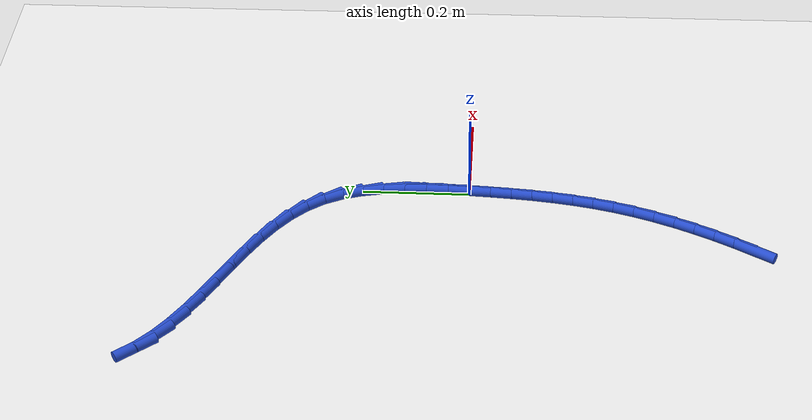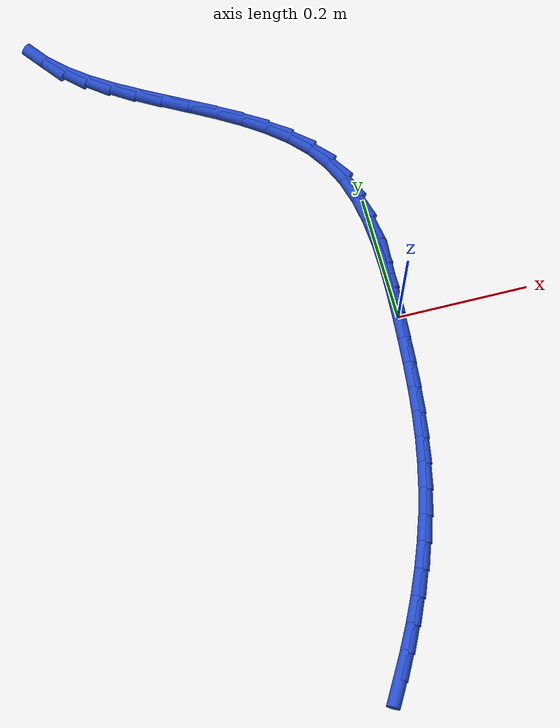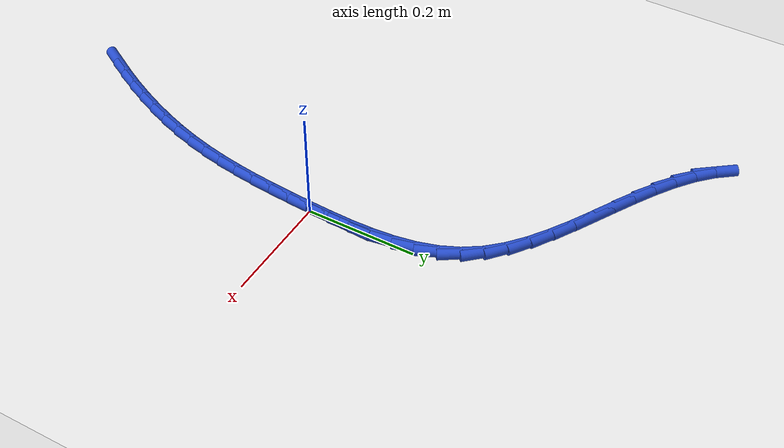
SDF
<sdf version="1.6">
 <world name="default">
  <model name="ground_plane">
   <static>1</static>
   <link name="link">
    <collision name="collision">
     <geometry><plane><normal>0 0 1</normal><size>100 100</size></plane></geometry>
     <surface><friction><ode><mu>100</mu><mu2>50</mu2></ode></friction></surface>
    </collision>
    <visual name="visual">
     <cast_shadows>0</cast_shadows>
     <geometry><plane><normal>0 0 1</normal><size>100 100</size></plane></geometry>
     <material>
      <script><uri>file://media/materials/scripts/gazebo.material</uri><name>Gazebo/WhiteGlow</name></script>
     </material>
    </visual>
   </link>
  </model>
  <model name="line">
   <link name="link_0">
    <pose>-4.9439619065339e-17 -1.3877787807814457e-17 0.01 0 1.57 1.5212782375140808</pose>
    <collision name="collision">
     <geometry><cylinder><radius>0.01</radius><length>0.08</length></cylinder></geometry>
    </collision>
    <visual name="visual">
     <material>
      <script><name>Gazebo/Blue</name><uri>file://media/materials/scripts/gazebo.material</uri></script>
     </material>
     <geometry><cylinder><radius>0.01</radius><length>0.08</length></cylinder></geometry>
    </visual>
   </link>
   <link name="link_1">
    <pose>0.002019072190069594 0.0407411042475016 0.01 0 1.57 1.547509694619837</pose>
    <collision name="collision">
     <geometry><cylinder><radius>0.01</radius><length>0.08</length></cylinder></geometry>
    </collision>
    <visual name="visual">
     <material>
      <script><name>Gazebo/Blue</name><uri>file://media/materials/scripts/gazebo.material</uri></script>
     </material>
     <geometry><cylinder><radius>0.01</radius><length>0.08</length></cylinder></geometry>
    </visual>
   </link>
   <link name="link_2">
    <pose>0.00297402738892121 0.08174242087388409 0.01 0 1.57 -1.5500578191192729</pose>
    <collision name="collision">
     <geometry><cylinder><radius>0.01</radius><length>0.08</length></cylinder></geometry>
    </collision>
    <visual name="visual">
     <material>
      <script><name>Gazebo/Blue</name><uri>file://media/materials/scripts/gazebo.material</uri></script>
     </material>
     <geometry><cylinder><radius>0.01</radius><length>0.08</length></cylinder></geometry>
    </visual>
   </link>
   <link name="link_3">
    <pose>0.002130005010686799 0.12243490402226717 0.01 0 1.57 -1.4861592672072554</pose>
    <collision name="collision">
     <geometry><cylinder><radius>0.01</radius><length>0.08</length></cylinder></geometry>
    </collision>
    <visual name="visual">
     <material>
      <script><name>Gazebo/Blue</name><uri>file://media/materials/scripts/gazebo.material</uri></script>
     </material>
     <geometry><cylinder><radius>0.01</radius><length>0.08</length></cylinder></geometry>
    </visual>
   </link>
   <link name="link_4">
    <pose>-0.0012478555305016417 0.1622495078357706 0.01 0 1.57 -1.3992653829619528</pose>
    <collision name="collision">
     <geometry><cylinder><radius>0.01</radius><length>0.08</length></cylinder></geometry>
    </collision>
    <visual name="visual">
     <material>
      <script><name>Gazebo/Blue</name><uri>file://media/materials/scripts/gazebo.material</uri></script>
     </material>
     <geometry><cylinder><radius>0.01</radius><length>0.08</length></cylinder></geometry>
    </visual>
   </link>
   <link name="link_5">
    <pose>-0.007894414820512115 0.20061718645751414 0.01 0 1.57 -1.2857974622608102</pose>
    <collision name="collision">
     <geometry><cylinder><radius>0.01</radius><length>0.08</length></cylinder></geometry>
    </collision>
    <visual name="visual">
     <material>
      <script><name>Gazebo/Blue</name><uri>file://media/materials/scripts/gazebo.material</uri></script>
     </material>
     <geometry><cylinder><radius>0.01</radius><length>0.08</length></cylinder></geometry>
    </visual>
   </link>
   <link name="link_6">
    <pose>-0.018544533445212612 0.23696889403061752 0.01 0 1.57 -1.1431864656704414</pose>
    <collision name="collision">
     <geometry><cylinder><radius>0.01</radius><length>0.08</length></cylinder></geometry>
    </collision>
    <visual name="visual">
     <material>
      <script><name>Gazebo/Blue</name><uri>file://media/materials/scripts/gazebo.material</uri></script>
     </material>
     <geometry><cylinder><radius>0.01</radius><length>0.08</length></cylinder></geometry>
    </visual>
   </link>
   <link name="link_7">
    <pose>-0.033933071990471145 0.2707355846982004 0.01 0 1.57 -0.9750831358522055</pose>
    <collision name="collision">
     <geometry><cylinder><radius>0.01</radius><length>0.08</length></cylinder></geometry>
    </collision>
    <visual name="visual">
     <material>
      <script><name>Gazebo/Blue</name><uri>file://media/materials/scripts/gazebo.material</uri></script>
     </material>
     <geometry><cylinder><radius>0.01</radius><length>0.08</length></cylinder></geometry>
    </visual>
   </link>
   <link name="link_8">
    <pose>-0.0547186259004707 0.30139898726054243 0.01 0 1.57 -0.8180725574700213</pose>
    <collision name="collision">
     <geometry><cylinder><radius>0.01</radius><length>0.08</length></cylinder></geometry>
    </collision>
    <visual name="visual">
     <material>
      <script><name>Gazebo/Blue</name><uri>file://media/materials/scripts/gazebo.material</uri></script>
     </material>
     <geometry><cylinder><radius>0.01</radius><length>0.08</length></cylinder></geometry>
    </visual>
   </link>
   <link name="link_9">
    <pose>-0.08062906213488108 0.32906047690768675 0.01 0 1.57 -0.6958646833865341</pose>
    <collision name="collision">
     <geometry><cylinder><radius>0.01</radius><length>0.08</length></cylinder></geometry>
    </collision>
    <visual name="visual">
     <material>
      <script><name>Gazebo/Blue</name><uri>file://media/materials/scripts/gazebo.material</uri></script>
     </material>
     <geometry><cylinder><radius>0.01</radius><length>0.08</length></cylinder></geometry>
    </visual>
   </link>
   <link name="link_10">
    <pose>-0.11077012808983928 0.35423561422096833 0.01 0 1.57 -0.6064150932091392</pose>
    <collision name="collision">
     <geometry><cylinder><radius>0.01</radius><length>0.08</length></cylinder></geometry>
    </collision>
    <visual name="visual">
     <material>
      <script><name>Gazebo/Blue</name><uri>file://media/materials/scripts/gazebo.material</uri></script>
     </material>
     <geometry><cylinder><radius>0.01</radius><length>0.08</length></cylinder></geometry>
    </visual>
   </link>
   <link name="link_11">
    <pose>-0.14423618496678628 0.37744754031090344 0.01 0 1.57 -0.5453350447290717</pose>
    <collision name="collision">
     <geometry><cylinder><radius>0.01</radius><length>0.08</length></cylinder></geometry>
    </collision>
    <visual name="visual">
     <material>
      <script><name>Gazebo/Blue</name><uri>file://media/materials/scripts/gazebo.material</uri></script>
     </material>
     <geometry><cylinder><radius>0.01</radius><length>0.08</length></cylinder></geometry>
    </visual>
   </link>
   <link name="link_12">
    <pose>-0.180121593967163 0.3992193962880084 0.01 0 1.57 -0.5086834063708454</pose>
    <collision name="collision">
     <geometry><cylinder><radius>0.01</radius><length>0.08</length></cylinder></geometry>
    </collision>
    <visual name="visual">
     <material>
      <script><name>Gazebo/Blue</name><uri>file://media/materials/scripts/gazebo.material</uri></script>
     </material>
     <geometry><cylinder><radius>0.01</radius><length>0.08</length></cylinder></geometry>
    </visual>
   </link>
   <link name="link_13">
    <pose>-0.21752071629241038 0.42007432326279925 0.01 0 1.57 -0.4938541760679135</pose>
    <collision name="collision">
     <geometry><cylinder><radius>0.01</radius><length>0.08</length></cylinder></geometry>
    </collision>
    <visual name="visual">
     <material>
      <script><name>Gazebo/Blue</name><uri>file://media/materials/scripts/gazebo.material</uri></script>
     </material>
     <geometry><cylinder><radius>0.01</radius><length>0.08</length></cylinder></geometry>
    </visual>
   </link>
   <link name="link_14">
    <pose>-0.2555279131439692 0.44053546234579233 0.01 0 1.57 -0.4997881079672558</pose>
    <collision name="collision">
     <geometry><cylinder><radius>0.01</radius><length>0.08</length></cylinder></geometry>
    </collision>
    <visual name="visual">
     <material>
      <script><name>Gazebo/Blue</name><uri>file://media/materials/scripts/gazebo.material</uri></script>
     </material>
     <geometry><cylinder><radius>0.01</radius><length>0.08</length></cylinder></geometry>
    </visual>
   </link>
   <link name="link_15">
    <pose>-0.2932375457232807 0.46112595464750383 0.01 0 1.57 -0.5270022086999685</pose>
    <collision name="collision">
     <geometry><cylinder><radius>0.01</radius><length>0.08</length></cylinder></geometry>
    </collision>
    <visual name="visual">
     <material>
      <script><name>Gazebo/Blue</name><uri>file://media/materials/scripts/gazebo.material</uri></script>
     </material>
     <geometry><cylinder><radius>0.01</radius><length>0.08</length></cylinder></geometry>
    </visual>
   </link>
   <link name="link_16">
    <pose>-0.32974397523178556 0.48236894127845 0.01 0 1.57 -0.5776043497219896</pose>
    <collision name="collision">
     <geometry><cylinder><radius>0.01</radius><length>0.08</length></cylinder></geometry>
    </collision>
    <visual name="visual">
     <material>
      <script><name>Gazebo/Blue</name><uri>file://media/materials/scripts/gazebo.material</uri></script>
     </material>
     <geometry><cylinder><radius>0.01</radius><length>0.08</length></cylinder></geometry>
    </visual>
   </link>
   <link name="link_17">
    <pose>-0.36414156287092464 0.5047875633491468 0.01 0 1.57 -0.6552259573490895</pose>
    <collision name="collision">
     <geometry><cylinder><radius>0.01</radius><length>0.08</length></cylinder></geometry>
    </collision>
    <visual name="visual">
     <material>
      <script><name>Gazebo/Blue</name><uri>file://media/materials/scripts/gazebo.material</uri></script>
     </material>
     <geometry><cylinder><radius>0.01</radius><length>0.08</length></cylinder></geometry>
    </visual>
   </link>
   <link name="link_18">
    <pose>-0.39552466984213913 0.5289049619701107 0.01 0 1.57 -0.7645160113666479</pose>
    <collision name="collision">
     <geometry><cylinder><radius>0.01</radius><length>0.08</length></cylinder></geometry>
    </collision>
    <visual name="visual">
     <material>
      <script><name>Gazebo/Blue</name><uri>file://media/materials/scripts/gazebo.material</uri></script>
     </material>
     <geometry><cylinder><radius>0.01</radius><length>0.08</length></cylinder></geometry>
    </visual>
   </link>
   <link name="link_19">
    <pose>-0.4229876573468699 0.5552442782518581 0.01 0 1.57 -0.90940943849488</pose>
    <collision name="collision">
     <geometry><cylinder><radius>0.01</radius><length>0.08</length></cylinder></geometry>
    </collision>
    <visual name="visual">
     <material>
      <script><name>Gazebo/Blue</name><uri>file://media/materials/scripts/gazebo.material</uri></script>
     </material>
     <geometry><cylinder><radius>0.01</radius><length>0.08</length></cylinder></geometry>
    </visual>
   </link>
   <link name="link_206">
    <pose>-0.14525427539772523 -0.5185400722655584 0.01 0 1.57 1.0509034026036084</pose>
    <collision name="collision">
     <geometry><cylinder><radius>0.01</radius><length>0.08</length></cylinder></geometry>
    </collision>
    <visual name="visual">
     <material>
      <script><name>Gazebo/Blue</name><uri>file://media/materials/scripts/gazebo.material</uri></script>
     </material>
     <geometry><cylinder><radius>0.01</radius><length>0.08</length></cylinder></geometry>
    </visual>
   </link>
   <link name="link_207">
    <pose>-0.12632454204519783 -0.48547039515895135 0.01 0 1.57 1.08466828750878</pose>
    <collision name="collision">
     <geometry><cylinder><radius>0.01</radius><length>0.08</length></cylinder></geometry>
    </collision>
    <visual name="visual">
     <material>
      <script><name>Gazebo/Blue</name><uri>file://media/materials/scripts/gazebo.material</uri></script>
     </material>
     <geometry><cylinder><radius>0.01</radius><length>0.08</length></cylinder></geometry>
    </visual>
   </link>
   <link name="link_208">
    <pose>-0.10820672047569789 -0.451183925967678 0.01 0 1.57 1.1195645639304155</pose>
    <collision name="collision">
     <geometry><cylinder><radius>0.01</radius><length>0.08</length></cylinder></geometry>
    </collision>
    <visual name="visual">
     <material>
      <script><name>Gazebo/Blue</name><uri>file://media/materials/scripts/gazebo.material</uri></script>
     </material>
     <geometry><cylinder><radius>0.01</radius><length>0.08</length></cylinder></geometry>
    </visual>
   </link>
   <link name="link_209">
    <pose>-0.0911040809284948 -0.4158898351821769 0.01 0 1.57 1.1562089339469532</pose>
    <collision name="collision">
     <geometry><cylinder><radius>0.01</radius><length>0.08</length></cylinder></geometry>
    </collision>
    <visual name="visual">
     <material>
      <script><name>Gazebo/Blue</name><uri>file://media/materials/scripts/gazebo.material</uri></script>
     </material>
     <geometry><cylinder><radius>0.01</radius><length>0.08</length></cylinder></geometry>
    </visual>
   </link>
   <link name="link_210">
    <pose>-0.07521989364285839 -0.37979729329288736 0.01 0 1.57 1.1952411693741822</pose>
    <collision name="collision">
     <geometry><cylinder><radius>0.01</radius><length>0.08</length></cylinder></geometry>
    </collision>
    <visual name="visual">
     <material>
      <script><name>Gazebo/Blue</name><uri>file://media/materials/scripts/gazebo.material</uri></script>
     </material>
     <geometry><cylinder><radius>0.01</radius><length>0.08</length></cylinder></geometry>
    </visual>
   </link>
   <link name="link_211">
    <pose>-0.06075742885805854 -0.3431154707902482 0.01 0 1.57 1.2373510526653235</pose>
    <collision name="collision">
     <geometry><cylinder><radius>0.01</radius><length>0.08</length></cylinder></geometry>
    </collision>
    <visual name="visual">
     <material>
      <script><name>Gazebo/Blue</name><uri>file://media/materials/scripts/gazebo.material</uri></script>
     </material>
     <geometry><cylinder><radius>0.01</radius><length>0.08</length></cylinder></geometry>
    </visual>
   </link>
   <link name="link_212">
    <pose>-0.047919956813364875 -0.3060535381646981 0.01 0 1.57 1.283245924932963</pose>
    <collision name="collision">
     <geometry><cylinder><radius>0.01</radius><length>0.08</length></cylinder></geometry>
    </collision>
    <visual name="visual">
     <material>
      <script><name>Gazebo/Blue</name><uri>file://media/materials/scripts/gazebo.material</uri></script>
     </material>
     <geometry><cylinder><radius>0.01</radius><length>0.08</length></cylinder></geometry>
    </visual>
   </link>
   <link name="link_213">
    <pose>-0.03690779525757506 -0.26881846305890433 0.01 0 1.57 1.3304264983500265</pose>
    <collision name="collision">
     <geometry><cylinder><radius>0.01</radius><length>0.08</length></cylinder></geometry>
    </collision>
    <visual name="visual">
     <material>
      <script><name>Gazebo/Blue</name><uri>file://media/materials/scripts/gazebo.material</uri></script>
     </material>
     <geometry><cylinder><radius>0.01</radius><length>0.08</length></cylinder></geometry>
    </visual>
   </link>
   <link name="link_214">
    <pose>-0.027759943594482597 -0.23149685379163648 0.01 0 1.57 1.373770922695233</pose>
    <collision name="collision">
     <geometry><cylinder><radius>0.01</radius><length>0.08</length></cylinder></geometry>
    </collision>
    <visual name="visual">
     <material>
      <script><name>Gazebo/Blue</name><uri>file://media/materials/scripts/gazebo.material</uri></script>
     </material>
     <geometry><cylinder><radius>0.01</radius><length>0.08</length></cylinder></geometry>
    </visual>
   </link>
   <link name="link_215">
    <pose>-0.020274059229381157 -0.19399525385539587 0.01 0 1.57 1.4121496501016813</pose>
    <collision name="collision">
     <geometry><cylinder><radius>0.01</radius><length>0.08</length></cylinder></geometry>
    </collision>
    <visual name="visual">
     <material>
      <script><name>Gazebo/Blue</name><uri>file://media/materials/scripts/gazebo.material</uri></script>
     </material>
     <geometry><cylinder><radius>0.01</radius><length>0.08</length></cylinder></geometry>
    </visual>
   </link>
   <link name="link_216">
    <pose>-0.014228023680163772 -0.15620545198905 0.01 0 1.57 1.4450227025386326</pose>
    <collision name="collision">
     <geometry><cylinder><radius>0.01</radius><length>0.08</length></cylinder></geometry>
    </collision>
    <visual name="visual">
     <material>
      <script><name>Gazebo/Blue</name><uri>file://media/materials/scripts/gazebo.material</uri></script>
     </material>
     <geometry><cylinder><radius>0.01</radius><length>0.08</length></cylinder></geometry>
    </visual>
   </link>
   <link name="link_217">
    <pose>-0.009399718464723905 -0.11801923693146957 0.01 0 1.57 1.4720589962910704</pose>
    <collision name="collision">
     <geometry><cylinder><radius>0.01</radius><length>0.08</length></cylinder></geometry>
    </collision>
    <visual name="visual">
     <material>
      <script><name>Gazebo/Blue</name><uri>file://media/materials/scripts/gazebo.material</uri></script>
     </material>
     <geometry><cylinder><radius>0.01</radius><length>0.08</length></cylinder></geometry>
    </visual>
   </link>
   <link name="link_218">
    <pose>-0.005567025100954556 -0.07932839742152215 0.01 0 1.57 1.4931179797888143</pose>
    <collision name="collision">
     <geometry><cylinder><radius>0.01</radius><length>0.08</length></cylinder></geometry>
    </collision>
    <visual name="visual">
     <material>
      <script><name>Gazebo/Blue</name><uri>file://media/materials/scripts/gazebo.material</uri></script>
     </material>
     <geometry><cylinder><radius>0.01</radius><length>0.08</length></cylinder></geometry>
    </visual>
   </link>
   <link name="link_219">
    <pose>-0.002507825106748896 -0.04002472219807639 0.01 0 1.57 1.5082212265815136</pose>
    <collision name="collision">
     <geometry><cylinder><radius>0.01</radius><length>0.08</length></cylinder></geometry>
    </collision>
    <visual name="visual">
     <material>
      <script><name>Gazebo/Blue</name><uri>file://media/materials/scripts/gazebo.material</uri></script>
     </material>
     <geometry><cylinder><radius>0.01</radius><length>0.08</length></cylinder></geometry>
    </visual>
   </link>
   <link name="link_220">
    <pose>-3.859759734048396e-17 1.1796119636642288e-16 0.01 0 1.57 1.517521047941559</pose>
    <collision name="collision">
     <geometry><cylinder><radius>0.01</radius><length>0.08</length></cylinder></geometry>
    </collision>
    <visual name="visual">
     <material>
      <script><name>Gazebo/Blue</name><uri>file://media/materials/scripts/gazebo.material</uri></script>
     </material>
     <geometry><cylinder><radius>0.01</radius><length>0.08</length></cylinder></geometry>
    </visual>
   </link>
   <link name="link_221">
    <pose>0.002178568701398679 0.04085398043383574 0.01 0 1.57 1.521270959070328</pose>
    <collision name="collision">
     <geometry><cylinder><radius>0.01</radius><length>0.08</length></cylinder></geometry>
    </collision>
    <visual name="visual">
     <material>
      <script><name>Gazebo/Blue</name><uri>file://media/materials/scripts/gazebo.material</uri></script>
     </material>
     <geometry><cylinder><radius>0.01</radius><length>0.08</length></cylinder></geometry>
    </visual>
   </link>
   <link name="link_222">
    <pose>0.004249999479554308 0.08264543036456587 0.01 0 1.57 1.5194170908272167</pose>
    <collision name="collision">
     <geometry><cylinder><radius>0.01</radius><length>0.08</length></cylinder></geometry>
    </collision>
    <visual name="visual">
     <material>
      <script><name>Gazebo/Blue</name><uri>file://media/materials/scripts/gazebo.material</uri></script>
     </material>
     <geometry><cylinder><radius>0.01</radius><length>0.08</length></cylinder></geometry>
    </visual>
   </link>
  </model>
 </world>
</sdf>
